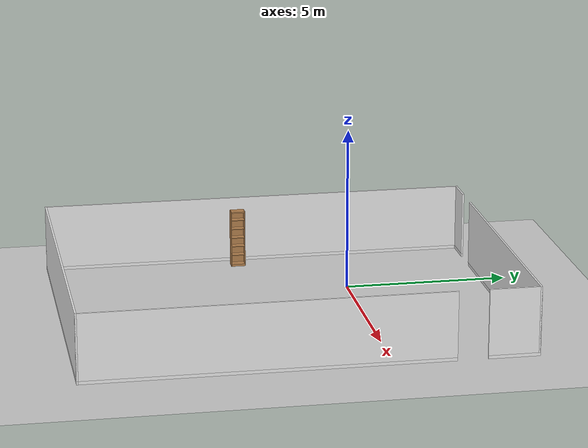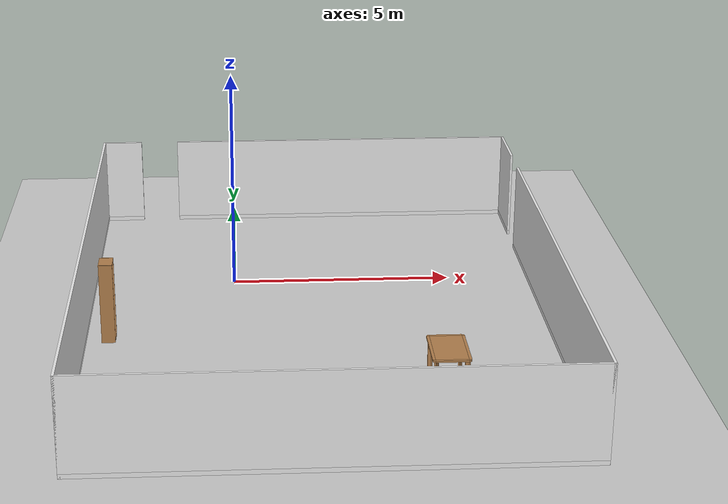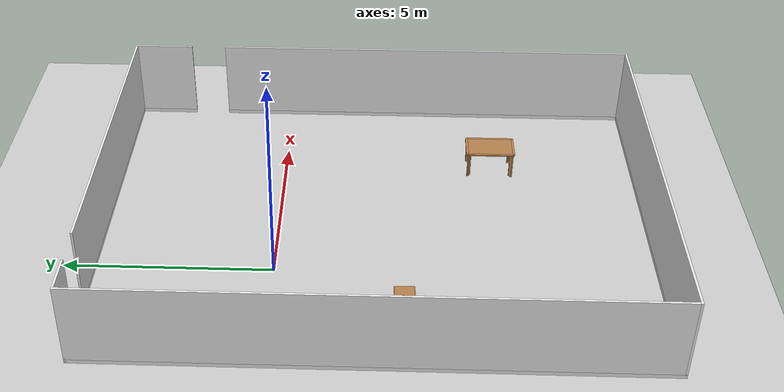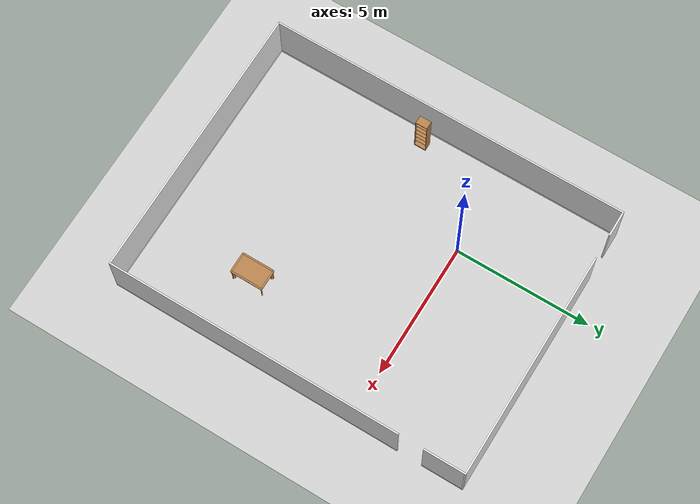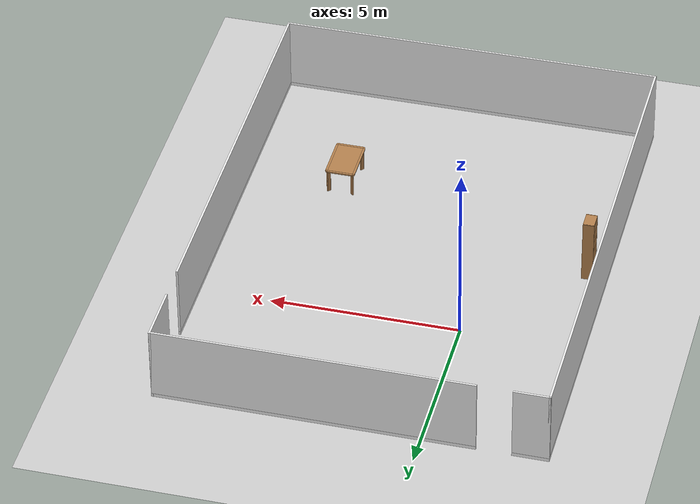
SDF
<sdf version="1.7">
 <world name="default">
  <model name="ground_plane">
   <static>1</static>
   <link name="link">
    <collision name="collision">
     <geometry><plane><normal>0 0 1</normal><size>100 100</size></plane></geometry>
     <surface>
      <contact><collide_bitmask>65535</collide_bitmask></contact>
      <friction><ode><mu>100</mu><mu2>50</mu2></ode></friction>
     </surface>
    </collision>
    <visual name="visual">
     <cast_shadows>0</cast_shadows>
     <geometry><plane><normal>0 0 1</normal><size>100 100</size></plane></geometry>
     <material>
      <script><uri>file://media/materials/scripts/gazebo.material</uri><name>Gazebo/Grey</name></script>
     </material>
    </visual>
   </link>
  </model>
  <model name="full_outside_wall">
   <link name="link">
    <inertial>
     <mass>50</mass>
     <inertia><ixx>1</ixx><ixy>0</ixy><ixz>0</ixz><iyy>1</iyy><iyz>0</iyz><izz>1</izz></inertia>
    </inertial>
    <visual name="x00_13y00_bottom_frame">
     <pose>5.0375 -0.0275 0.05 0 -0 0</pose>
     <geometry><box><size>10.185 0.055 0.1</size></box></geometry>
     <material>
      <script><uri>model://base_materials/color/scripts</uri><name>hsr_color/white</name></script>
     </material>
    </visual>
    <collision name="x00_13y00_collision_bottom_frame">
     <pose>5.0375 -0.0275 0.05 0 -0 0</pose>
     <geometry><box><size>10.185 0.055 0.1</size></box></geometry>
    </collision>
    <visual name="wall_x00_13y00">
     <pose>5.0375 -0.0275 1.095 0 -0 0</pose>
     <geometry><box><size>10.185 0.055 1.99</size></box></geometry>
     <material>
      <script>
       <uri>model://base_materials/wall/scripts</uri>
       <uri>model://base_materials/wall/textures</uri>
       <name>wall/white_noise</name>
      </script>
     </material>
    </visual>
    <collision name="wall_x00_13y00">
     <pose>5.0375 -0.002 1.095 0 -0 0</pose>
     <geometry><box><size>10.08 0.055 1.99</size></box></geometry>
    </collision>
    <visual name="x00y00_15_bottom_frame">
     <pose>-0.0275 6.59 0.05 0 -0 0</pose>
     <geometry><box><size>0.055 13.29 0.1</size></box></geometry>
     <material>
      <script><uri>model://base_materials/color/scripts</uri><name>hsr_color/white</name></script>
     </material>
    </visual>
    <collision name="x00y00_15_collision_bottom_frame">
     <pose>-0.0275 6.59 0.05 0 -0 0</pose>
     <geometry><box><size>0.055 13.29 0.1</size></box></geometry>
    </collision>
    <visual name="wall_x00y00_15">
     <pose>-0.0275 6.59 1.095 0 -0 0</pose>
     <geometry><box><size>0.055 13.29 1.99</size></box></geometry>
     <material>
      <script>
       <uri>model://base_materials/wall/scripts</uri>
       <uri>model://base_materials/wall/textures</uri>
       <name>wall/white_noise</name>
      </script>
     </material>
    </visual>
    <collision name="wall_x00y00_x00y15">
     <pose>-0.002 6.59 1.095 0 -0 0</pose>
     <geometry><box><size>0.002 13.29 1.99</size></box></geometry>
    </collision>
    <visual name="x13y00_12_bottom_frame">
     <pose>10.1025 5.3725 0.05 0 -0 0</pose>
     <geometry><box><size>0.055 10.855 0.1</size></box></geometry>
     <material>
      <script><uri>model://base_materials/color/scripts</uri><name>hsr_color/white</name></script>
     </material>
    </visual>
    <collision name="x13y00_12_collision_bottom_frame">
     <pose>10.1025 5.3725 0.05 0 -0 0</pose>
     <geometry><box><size>0.055 10.855 0.1</size></box></geometry>
    </collision>
    <visual name="wall_x13y00_12">
     <pose>10.1025 5.3725 1.095 0 -0 0</pose>
     <geometry><box><size>0.055 10.855 1.99</size></box></geometry>
     <material>
      <script>
       <uri>model://base_materials/wall/scripts</uri>
       <uri>model://base_materials/wall/textures</uri>
       <name>wall/white_noise</name>
      </script>
     </material>
    </visual>
    <collision name="wall_x13y00_12">
     <pose>10.1025 5.3725 1.095 0 -0 0</pose>
     <geometry><box><size>0.055 10.855 1.99</size></box></geometry>
    </collision>
    <visual name="x13y14_16_bottom_frame">
     <pose>10.1025 12.4675 0.05 0 -0 0</pose>
     <geometry><box><size>0.055 1.535 0.1</size></box></geometry>
     <material>
      <script><uri>model://base_materials/color/scripts</uri><name>hsr_color/white</name></script>
     </material>
    </visual>
    <collision name="x13y14_16_collision_bottom_frame">
     <pose>10.1025 12.4675 0.05 0 -0 0</pose>
     <geometry><box><size>0.055 1.535 0.1</size></box></geometry>
    </collision>
    <visual name="wall_x13y14_x13y16">
     <pose>10.1025 12.4675 1.095 0 -0 0</pose>
     <geometry><box><size>0.055 1.535 1.99</size></box></geometry>
     <material>
      <script>
       <uri>model://base_materials/wall/scripts</uri>
       <uri>model://base_materials/wall/textures</uri>
       <name>wall/white_noise</name>
      </script>
     </material>
    </visual>
    <collision name="wall_x13y14_x13y16">
     <pose>10.1025 12.4675 1.095 0 -0 0</pose>
     <geometry><box><size>0.055 1.535 1.99</size></box></geometry>
    </collision>
    <visual name="x00_01y16_bottom_frame">
     <pose>0.4225 13.2075 0.05 0 -0 0</pose>
     <geometry><box><size>0.955 0.055 0.1</size></box></geometry>
     <material>
      <script><uri>model://base_materials/color/scripts</uri><name>hsr_color/white</name></script>
     </material>
    </visual>
    <collision name="x00_01y16_collision_bottom_frame">
     <pose>0.4225 13.2075 0.05 0 -0 0</pose>
     <geometry><box><size>0.955 0.055 0.1</size></box></geometry>
    </collision>
    <visual name="wall_x00_01y16">
     <pose>0.4225 13.2075 1.095 0 -0 0</pose>
     <geometry><box><size>0.955 0.055 1.99</size></box></geometry>
     <material>
      <script>
       <uri>model://base_materials/wall/scripts</uri>
       <uri>model://base_materials/wall/textures</uri>
       <name>wall/white_noise</name>
      </script>
     </material>
    </visual>
    <collision name="wall_x00_x01y16">
     <pose>0.4225 13.2075 1.095 0 -0 0</pose>
     <geometry><box><size>0.955 0.055 1.99</size></box></geometry>
    </collision>
    <visual name="x03_13y16_bottom_frame">
     <pose>5.965 13.2075 0.05 0 -0 0</pose>
     <geometry><box><size>8.33 0.05 0.1</size></box></geometry>
     <material>
      <script><uri>model://base_materials/color/scripts</uri><name>hsr_color/white</name></script>
     </material>
    </visual>
    <collision name="x03_13y16_collision_bottom_frame">
     <pose>5.965 13.2075 0.05 0 -0 0</pose>
     <geometry><box><size>8.33 0.05 0.1</size></box></geometry>
    </collision>
    <visual name="wall_x03_13y16">
     <pose>5.965 13.2075 1.095 0 -0 0</pose>
     <geometry><box><size>8.33 0.055 1.99</size></box></geometry>
     <material>
      <script>
       <uri>model://base_materials/wall/scripts</uri>
       <uri>model://base_materials/wall/textures</uri>
       <name>wall/white_noise</name>
      </script>
     </material>
    </visual>
    <collision name="wall_x03_13y16">
     <pose>5.965 13.2075 1.095 0 -0 0</pose>
     <geometry><box><size>8.33 0.055 1.99</size></box></geometry>
    </collision>
    <velocity_decay><linear>0</linear><angular>0</angular></velocity_decay>
   </link>
   <static>1</static>
   <pose>-3.20717 -8.97561 0 0 -0 0</pose>
  </model>
  <model name="high_shelf">
   <link name="link">
    <inertial>
     <mass>5</mass>
     <inertia><ixx>1</ixx><ixy>0</ixy><ixz>0</ixz><iyy>1</iyy><iyz>0</iyz><izz>1</izz></inertia>
    </inertial>
    <visual name="left_board">
     <pose>-0.1475 0.009 0.898 0 -0 0</pose>
     <geometry><box><size>0.295 0.018 1.796</size></box></geometry>
     <material>
      <script>
       <uri>model://base_materials/wood/scripts</uri>
       <uri>model://base_materials/wood/textures</uri>
       <name>base_materials/light_wood</name>
      </script>
     </material>
    </visual>
    <collision name="collision_left_board">
     <pose>-0.1475 0.009 0.898 0 -0 0</pose>
     <geometry><box><size>0.295 0.018 1.796</size></box></geometry>
    </collision>
    <visual name="right_board">
     <pose>-0.1475 0.441 0.898 0 -0 0</pose>
     <geometry><box><size>0.295 0.018 1.796</size></box></geometry>
     <material>
      <script>
       <uri>model://base_materials/wood/scripts</uri>
       <uri>model://base_materials/wood/textures</uri>
       <name>base_materials/light_wood</name>
      </script>
     </material>
    </visual>
    <collision name="collision_right_board">
     <pose>-0.1475 0.441 0.898 0 -0 0</pose>
     <geometry><box><size>0.295 0.018 1.796</size></box></geometry>
    </collision>
    <visual name="top_board">
     <pose>-0.1475 0.225 1.7825 0 -0 0</pose>
     <geometry><box><size>0.295 0.414 0.035</size></box></geometry>
     <material>
      <script>
       <uri>model://base_materials/wood/scripts</uri>
       <uri>model://base_materials/wood/textures</uri>
       <name>base_materials/light_wood</name>
      </script>
     </material>
    </visual>
    <collision name="collision_top_board">
     <pose>-0.1475 0.225 1.7825 0 -0 0</pose>
     <geometry><box><size>0.295 0.414 0.035</size></box></geometry>
    </collision>
    <visual name="1st_shelf">
     <pose>-0.162 0.225 1.51 0 -0 0</pose>
     <geometry><box><size>0.266 0.414 0.018</size></box></geometry>
     <material>
      <script>
       <uri>model://base_materials/wood/scripts</uri>
       <uri>model://base_materials/wood/textures</uri>
       <name>base_materials/light_wood</name>
      </script>
     </material>
    </visual>
    <collision name="collision_1st_shelf">
     <pose>-0.162 0.225 1.51 0 -0 0</pose>
     <geometry><box><size>0.266 0.414 0.018</size></box></geometry>
    </collision>
    <visual name="2nd_shelf">
     <pose>-0.162 0.225 1.22 0 -0 0</pose>
     <geometry><box><size>0.266 0.414 0.018</size></box></geometry>
     <material>
      <script>
       <uri>model://base_materials/wood/scripts</uri>
       <uri>model://base_materials/wood/textures</uri>
       <name>base_materials/light_wood</name>
      </script>
     </material>
    </visual>
    <collision name="collision_2nd_shelf">
     <pose>-0.162 0.225 1.22 0 -0 0</pose>
     <geometry><box><size>0.266 0.414 0.018</size></box></geometry>
    </collision>
    <visual name="3rd_shelf">
     <pose>-0.162 0.225 0.93 0 -0 0</pose>
     <geometry><box><size>0.266 0.414 0.018</size></box></geometry>
     <material>
      <script>
       <uri>model://base_materials/wood/scripts</uri>
       <uri>model://base_materials/wood/textures</uri>
       <name>base_materials/light_wood</name>
      </script>
     </material>
    </visual>
    <collision name="collision_3rd_shelf">
     <pose>-0.162 0.225 0.93 0 -0 0</pose>
     <geometry><box><size>0.266 0.414 0.018</size></box></geometry>
    </collision>
    <visual name="4th_shelf">
     <pose>-0.162 0.225 0.65 0 -0 0</pose>
     <geometry><box><size>0.266 0.414 0.018</size></box></geometry>
     <material>
      <script>
       <uri>model://base_materials/wood/scripts</uri>
       <uri>model://base_materials/wood/textures</uri>
       <name>base_materials/light_wood</name>
      </script>
     </material>
    </visual>
    <collision name="collision_4th_shelf">
     <pose>-0.162 0.225 0.65 0 -0 0</pose>
     <geometry><box><size>0.266 0.414 0.018</size></box></geometry>
    </collision>
    <visual name="5th_shelf">
     <pose>-0.162 0.225 0.36 0 -0 0</pose>
     <geometry><box><size>0.266 0.414 0.018</size></box></geometry>
     <material>
      <script>
       <uri>model://base_materials/wood/scripts</uri>
       <uri>model://base_materials/wood/textures</uri>
       <name>base_materials/light_wood</name>
      </script>
     </material>
    </visual>
    <collision name="collision_5th_shelf">
     <pose>-0.162 0.225 0.36 0 -0 0</pose>
     <geometry><box><size>0.266 0.414 0.018</size></box></geometry>
    </collision>
    <visual name="bottom_board">
     <pose>-0.1475 0.225 0.035 0 -0 0</pose>
     <geometry><box><size>0.295 0.414 0.07</size></box></geometry>
     <material>
      <script>
       <uri>model://base_materials/wood/scripts</uri>
       <uri>model://base_materials/wood/textures</uri>
       <name>base_materials/light_wood</name>
      </script>
     </material>
    </visual>
    <collision name="collision_bottom_board">
     <pose>-0.1475 0.225 0.035 0 -0 0</pose>
     <geometry><box><size>0.295 0.414 0.07</size></box></geometry>
    </collision>
    <visual name="back_board">
     <pose>-0.286 0.225 0.898 0 -0 0</pose>
     <geometry><box><size>0.018 0.414 1.796</size></box></geometry>
     <material>
      <script>
       <uri>model://base_materials/wood/scripts</uri>
       <uri>model://base_materials/wood/textures</uri>
       <name>base_materials/light_wood</name>
      </script>
     </material>
    </visual>
    <collision name="collision_back_board">
     <pose>-0.286 0.225 0.898 0 -0 0</pose>
     <geometry><box><size>0.018 0.414 1.796</size></box></geometry>
    </collision>
    <velocity_decay><linear>0</linear><angular>0</angular></velocity_decay>
   </link>
   <static>1</static>
   <pose>-2.57618 -3.22643 0 0 -0 0</pose>
  </model>
  <model name="kitchen_table">
   <link name="link">
    <inertial>
     <mass>10</mass>
     <inertia><ixx>1</ixx><ixy>0</ixy><ixz>0</ixz><iyy>1</iyy><iyz>0</iyz><izz>1</izz></inertia>
    </inertial>
    <visual name="center_board">
     <pose>0 0 0.68 0 -0 0</pose>
     <geometry><box><size>0.68 1.13 0.04</size></box></geometry>
     <material>
      <script><uri>model://base_materials/wood/scripts/wood.material</uri><name>base_materials/wood</name></script>
     </material>
    </visual>
    <collision name="collision_center_board">
     <pose>0 0 0.68 0 -0 0</pose>
     <geometry><box><size>0.68 1.13 0.04</size></box></geometry>
    </collision>
    <visual name="front_board">
     <pose>0.37 0 0.68 0 -0 0</pose>
     <geometry><box><size>0.06 1.13 0.04</size></box></geometry>
     <material>
      <script><uri>model://base_materials/wood/scripts/wood.material</uri><name>base_materials/wood</name></script>
     </material>
    </visual>
    <collision name="collision_front_board">
     <pose>0.37 0 0.68 0 -0 0</pose>
     <geometry><box><size>0.06 1.13 0.04</size></box></geometry>
    </collision>
    <visual name="back_board">
     <pose>-0.37 0 0.68 0 -0 0</pose>
     <geometry><box><size>0.06 1.13 0.04</size></box></geometry>
     <material>
      <script><uri>model://base_materials/wood/scripts/wood.material</uri><name>base_materials/wood</name></script>
     </material>
    </visual>
    <collision name="collision_back_board">
     <pose>-0.37 0 0.68 0 -0 0</pose>
     <geometry><box><size>0.06 1.13 0.04</size></box></geometry>
    </collision>
    <visual name="right_board">
     <pose>0 0.595 0.68 0 -0 0</pose>
     <geometry><box><size>0.68 0.06 0.04</size></box></geometry>
     <material>
      <script><uri>model://base_materials/wood/scripts/wood.material</uri><name>base_materials/wood</name></script>
     </material>
    </visual>
    <collision name="collision_right_board">
     <pose>0 0.595 0.68 0 -0 0</pose>
     <geometry><box><size>0.68 0.06 0.04</size></box></geometry>
    </collision>
    <visual name="left_board">
     <pose>0 -0.595 0.68 0 -0 0</pose>
     <geometry><box><size>0.68 0.06 0.04</size></box></geometry>
     <material>
      <script><uri>model://base_materials/wood/scripts/wood.material</uri><name>base_materials/wood</name></script>
     </material>
    </visual>
    <collision name="collision_left_board">
     <pose>0 -0.595 0.68 0 -0 0</pose>
     <geometry><box><size>0.68 0.06 0.04</size></box></geometry>
    </collision>
    <visual name="front_right_corner_board">
     <pose>0.34 0.565 0.68 0 -0 0</pose>
     <geometry><cylinder><radius>0.06</radius><length>0.039</length></cylinder></geometry>
     <material>
      <script><uri>model://base_materials/wood/scripts/wood.material</uri><name>base_materials/wood</name></script>
     </material>
    </visual>
    <collision name="collision_front_right_corner_board">
     <pose>0.34 0.565 0.68 0 -0 0</pose>
     <geometry><cylinder><radius>0.06</radius><length>0.039</length></cylinder></geometry>
    </collision>
    <visual name="front_left_corner_board">
     <pose>0.34 -0.565 0.68 0 -0 0</pose>
     <geometry><cylinder><radius>0.06</radius><length>0.039</length></cylinder></geometry>
     <material>
      <script><uri>model://base_materials/wood/scripts/wood.material</uri><name>base_materials/wood</name></script>
     </material>
    </visual>
    <collision name="collision_front_left_corner_board">
     <pose>0.34 -0.565 0.68 0 -0 0</pose>
     <geometry><cylinder><radius>0.06</radius><length>0.039</length></cylinder></geometry>
    </collision>
    <visual name="front_back_right_corner_board">
     <pose>-0.34 0.565 0.68 0 -0 0</pose>
     <geometry><cylinder><radius>0.06</radius><length>0.039</length></cylinder></geometry>
     <material>
      <script><uri>model://base_materials/wood/scripts/wood.material</uri><name>base_materials/wood</name></script>
     </material>
    </visual>
    <collision name="collision_back_right_corner_board">
     <pose>-0.34 0.565 0.68 0 -0 0</pose>
     <geometry><cylinder><radius>0.06</radius><length>0.039</length></cylinder></geometry>
    </collision>
    <visual name="front_back_left_corner_board">
     <pose>-0.34 -0.565 0.68 0 -0 0</pose>
     <geometry><cylinder><radius>0.06</radius><length>0.039</length></cylinder></geometry>
     <material>
      <script><uri>model://base_materials/wood/scripts/wood.material</uri><name>base_materials/wood</name></script>
     </material>
    </visual>
    <collision name="collision_back_left_corner_board">
     <pose>-0.34 -0.565 0.68 0 -0 0</pose>
     <geometry><cylinder><radius>0.06</radius><length>0.039</length></cylinder></geometry>
    </collision>
    <visual name="front_left_corner_frame1">
     <pose>0.345858 -0.57086 0.33 0 -0 0</pose>
     <geometry><cylinder><radius>0.02</radius><length>0.66</length></cylinder></geometry>
     <material>
      <script><uri>model://base_materials/wood/scripts/wood.material</uri><name>base_materials/wood</name></script>
     </material>
    </visual>
    <collision name="collision_front_left_corner_frame1">
     <pose>0.345858 -0.57086 0.33 0 -0 0</pose>
     <geometry><cylinder><radius>0.02</radius><length>0.66</length></cylinder></geometry>
    </collision>
    <visual name="front_left_corner_frame2">
     <pose>0.317574 -0.54257 0.33 0 -0 0.7854</pose>
     <geometry><box><size>0.04 0.08 0.66</size></box></geometry>
     <material>
      <script><uri>model://base_materials/wood/scripts/wood.material</uri><name>base_materials/wood</name></script>
     </material>
    </visual>
    <collision name="collision_front_left_corner_frame2">
     <pose>0.317574 -0.54257 0.33 0 -0 0.7854</pose>
     <geometry><box><size>0.04 0.08 0.66</size></box></geometry>
    </collision>
    <visual name="front_left_corner_frame3">
     <pose>0.289289 -0.51429 0.33 0 -0 0</pose>
     <geometry><cylinder><radius>0.02</radius><length>0.66</length></cylinder></geometry>
     <material>
      <script><uri>model://base_materials/wood/scripts/wood.material</uri><name>base_materials/wood</name></script>
     </material>
    </visual>
    <collision name="collision_front_left_corner_frame3">
     <pose>0.289289 -0.51429 0.33 0 -0 0</pose>
     <geometry><cylinder><radius>0.02</radius><length>0.66</length></cylinder></geometry>
    </collision>
    <visual name="front_right_corner_frame1">
     <pose>0.345858 0.57086 0.33 0 -0 0</pose>
     <geometry><cylinder><radius>0.02</radius><length>0.66</length></cylinder></geometry>
     <material>
      <script><uri>model://base_materials/wood/scripts/wood.material</uri><name>base_materials/wood</name></script>
     </material>
    </visual>
    <collision name="collision_front_right_corner_frame1">
     <pose>0.345858 0.57086 0.33 0 -0 0</pose>
     <geometry><cylinder><radius>0.02</radius><length>0.66</length></cylinder></geometry>
    </collision>
    <visual name="front_right_corner_frame2">
     <pose>0.317574 0.54257 0.33 0 0 -0.7854</pose>
     <geometry><box><size>0.04 0.08 0.66</size></box></geometry>
     <material>
      <script><uri>model://base_materials/wood/scripts/wood.material</uri><name>base_materials/wood</name></script>
     </material>
    </visual>
    <collision name="collision_front_right_corner_frame2">
     <pose>0.317574 0.54257 0.33 0 0 -0.7854</pose>
     <geometry><box><size>0.04 0.08 0.66</size></box></geometry>
    </collision>
    <visual name="front_right_corner_frame3">
     <pose>0.289289 0.51429 0.33 0 -0 0</pose>
     <geometry><cylinder><radius>0.02</radius><length>0.66</length></cylinder></geometry>
     <material>
      <script><uri>model://base_materials/wood/scripts/wood.material</uri><name>base_materials/wood</name></script>
     </material>
    </visual>
    <collision name="collision_front_right_corner_frame3">
     <pose>0.289289 0.51429 0.33 0 -0 0</pose>
     <geometry><cylinder><radius>0.02</radius><length>0.66</length></cylinder></geometry>
    </collision>
    <visual name="back_left_corner_frame1">
     <pose>-0.345858 -0.57086 0.33 0 -0 0</pose>
     <geometry><cylinder><radius>0.02</radius><length>0.66</length></cylinder></geometry>
     <material>
      <script><uri>model://base_materials/wood/scripts/wood.material</uri><name>base_materials/wood</name></script>
     </material>
    </visual>
    <collision name="collision_back_left_corner_frame1">
     <pose>-0.345858 -0.57086 0.33 0 -0 0</pose>
     <geometry><cylinder><radius>0.02</radius><length>0.66</length></cylinder></geometry>
    </collision>
    <visual name="back_left_corner_frame2">
     <pose>-0.317574 -0.54257 0.33 0 0 -0.7854</pose>
     <geometry><box><size>0.04 0.08 0.66</size></box></geometry>
     <material>
      <script><uri>model://base_materials/wood/scripts/wood.material</uri><name>base_materials/wood</name></script>
     </material>
    </visual>
    <collision name="collision_back_left_corner_frame2">
     <pose>-0.317574 -0.54257 0.33 0 0 -0.7854</pose>
     <geometry><box><size>0.04 0.08 0.66</size></box></geometry>
    </collision>
    <visual name="back_left_corner_frame3">
     <pose>-0.289289 -0.51429 0.33 0 -0 0</pose>
     <geometry><cylinder><radius>0.02</radius><length>0.66</length></cylinder></geometry>
     <material>
      <script><uri>model://base_materials/wood/scripts/wood.material</uri><name>base_materials/wood</name></script>
     </material>
    </visual>
    <collision name="collision_back_left_corner_frame3">
     <pose>-0.289289 -0.51429 0.33 0 -0 0</pose>
     <geometry><cylinder><radius>0.02</radius><length>0.66</length></cylinder></geometry>
    </collision>
    <visual name="back_right_corner_frame1">
     <pose>-0.345858 0.57086 0.33 0 -0 0</pose>
     <geometry><cylinder><radius>0.02</radius><length>0.66</length></cylinder></geometry>
     <material>
      <script><uri>model://base_materials/wood/scripts/wood.material</uri><name>base_materials/wood</name></script>
     </material>
    </visual>
    <collision name="collision_back_right_corner_frame1">
     <pose>-0.345858 0.57086 0.33 0 -0 0</pose>
     <geometry><cylinder><radius>0.02</radius><length>0.66</length></cylinder></geometry>
    </collision>
    <visual name="back_right_corner_frame2">
     <pose>-0.317574 0.54257 0.33 0 -0 0.7854</pose>
     <geometry><box><size>0.04 0.08 0.66</size></box></geometry>
     <material>
      <script><uri>model://base_materials/wood/scripts/wood.material</uri><name>base_materials/wood</name></script>
     </material>
    </visual>
    <collision name="collision_back_right_corner_frame2">
     <pose>-0.317574 0.54257 0.33 0 -0 0.7854</pose>
     <geometry><box><size>0.04 0.08 0.66</size></box></geometry>
    </collision>
    <visual name="back_right_corner_frame3">
     <pose>-0.289289 0.51429 0.33 0 -0 0</pose>
     <geometry><cylinder><radius>0.02</radius><length>0.66</length></cylinder></geometry>
     <material>
      <script><uri>model://base_materials/wood/scripts/wood.material</uri><name>base_materials/wood</name></script>
     </material>
    </visual>
    <collision name="collision_back_right_corner_frame3">
     <pose>-0.289289 0.51429 0.33 0 -0 0</pose>
     <geometry><cylinder><radius>0.02</radius><length>0.66</length></cylinder></geometry>
    </collision>
    <velocity_decay><linear>0</linear><angular>0</angular></velocity_decay>
   </link>
   <static>1</static>
   <pose>4.3685 -5.29123 0 0 -0 0</pose>
  </model>
 </world>
</sdf>
